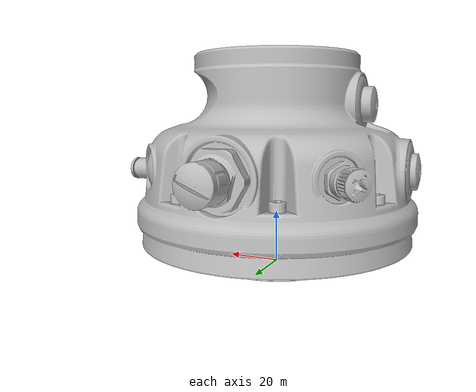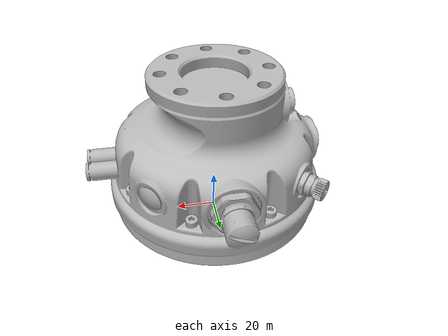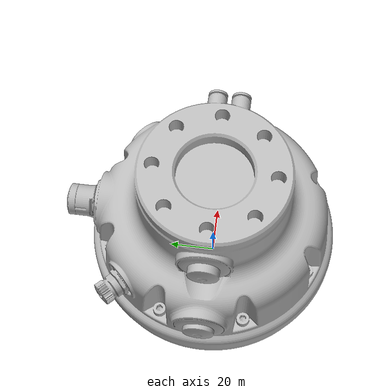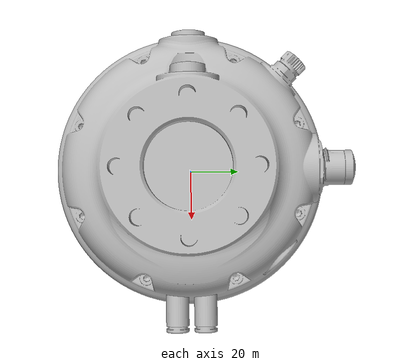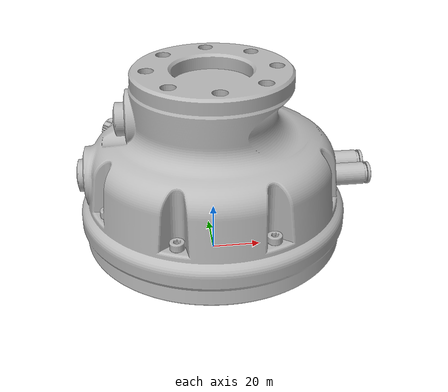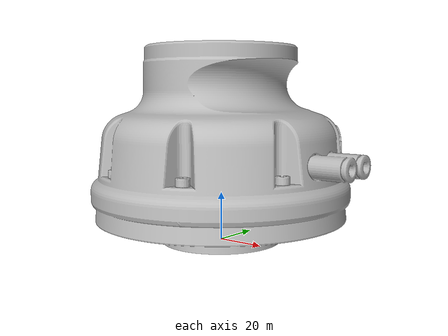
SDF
<?xml version="1.0"?>
<sdf version="1.6">
  <model name="lbr_iiwa_14_r820">
    <static>true</static>
    <link name="link">
      <visual name="visual">
        <geometry>
          <mesh>
            <uri>model://lbr_iiwa_14_r820/link_7_2.stl</uri>
            <scale>1 1 1</scale>
          </mesh>
        </geometry>
      </visual>
      <collision name="collision">
        <geometry>
          <mesh>
            <uri>model://lbr_iiwa_14_r820/link_7_2.stl</uri>
            <scale>1 1 1</scale>
          </mesh>
        </geometry>
      </collision>
    </link>
  </model>
</sdf>
